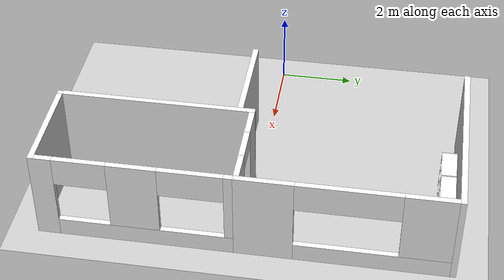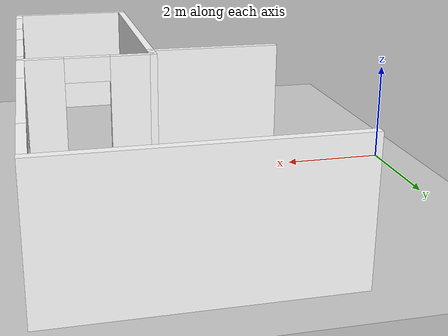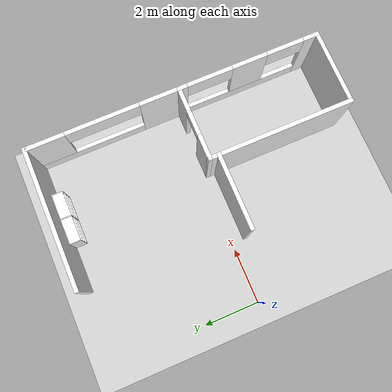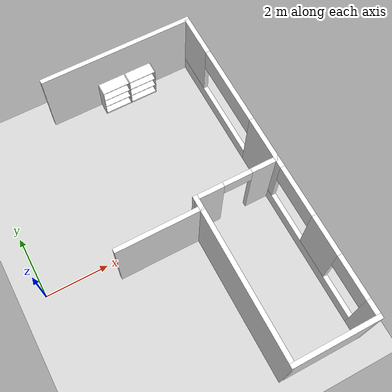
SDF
<sdf version="1.8">
 <world name="bot4House">
  <model name="ground_plane">
   <static>1</static>
   <link name="link">
    <collision name="collision">
     <geometry><plane><normal>0 0 1</normal><size>100 100</size></plane></geometry>
    </collision>
    <visual name="visual"><geometry><plane><normal>0 0 1</normal><size>100 100</size></plane></geometry></visual>
   </link>
  </model>
  <model name="house">
   <link name="Wall_106">
    <pose>6.2 -0.175 0 0 -0 0</pose>
    <visual name="Wall_106_Visual_1">
     <pose>0.922235 0 1.25 0 -0 0</pose>
     <geometry><box><size>0.905529 0.15 2.5</size></box></geometry>
     <material>
      <ambient>1 1 1 1</ambient>
      <diffuse>1 1 1 1</diffuse>
      <specular>0.2 0.2 0.2 1</specular>
      <emissive>0 0 0 1</emissive>
     </material>
    </visual>
    <visual name="Wall_106_Visual_2">
     <pose>0.019471 0 2.25 0 -0 0</pose>
     <geometry><box><size>0.9 0.15 0.5</size></box></geometry>
     <material>
      <ambient>1 1 1 1</ambient>
      <diffuse>1 1 1 1</diffuse>
      <specular>0.2 0.2 0.2 1</specular>
      <emissive>0 0 0 1</emissive>
     </material>
    </visual>
    <visual name="Wall_106_Visual_0">
     <pose>-0.902765 0 1.25 0 -0 0</pose>
     <geometry><box><size>0.944471 0.15 2.5</size></box></geometry>
     <material>
      <ambient>1 1 1 1</ambient>
      <diffuse>1 1 1 1</diffuse>
      <specular>0.2 0.2 0.2 1</specular>
      <emissive>0 0 0 1</emissive>
     </material>
    </visual>
    <collision name="Wall_106_Collision_1">
     <pose>0.922235 0 1.25 0 -0 0</pose>
     <geometry><box><size>0.905529 0.15 2.5</size></box></geometry>
     <surface>
      <friction>
       <ode><mu>1</mu><mu2>1</mu2><fdir1>0 0 0</fdir1><slip1>0</slip1><slip2>0</slip2></ode>
       <torsional>
        <coefficient>1</coefficient>
        <patch_radius>0</patch_radius>
        <surface_radius>0</surface_radius>
        <use_patch_radius>1</use_patch_radius>
        <ode><slip>0</slip></ode>
       </torsional>
      </friction>
      <bounce><restitution_coefficient>0</restitution_coefficient><threshold>1e+06</threshold></bounce>
      <contact>
       <collide_without_contact>0</collide_without_contact>
       <collide_without_contact_bitmask>1</collide_without_contact_bitmask>
       <collide_bitmask>1</collide_bitmask>
       <ode>
        <soft_cfm>0</soft_cfm>
        <soft_erp>0.2</soft_erp>
        <kp>1e+13</kp>
        <kd>1</kd>
        <max_vel>0.01</max_vel>
        <min_depth>0</min_depth>
       </ode>
       <bullet>
        <split_impulse>1</split_impulse>
        <split_impulse_penetration_threshold>-0.01</split_impulse_penetration_threshold>
        <soft_cfm>0</soft_cfm>
        <soft_erp>0.2</soft_erp>
        <kp>1e+13</kp>
        <kd>1</kd>
       </bullet>
      </contact>
     </surface>
    </collision>
    <collision name="Wall_106_Collision_0">
     <pose>-0.902765 0 1.25 0 -0 0</pose>
     <geometry><box><size>0.944471 0.15 2.5</size></box></geometry>
     <surface>
      <friction>
       <ode><mu>1</mu><mu2>1</mu2><fdir1>0 0 0</fdir1><slip1>0</slip1><slip2>0</slip2></ode>
       <torsional>
        <coefficient>1</coefficient>
        <patch_radius>0</patch_radius>
        <surface_radius>0</surface_radius>
        <use_patch_radius>1</use_patch_radius>
        <ode><slip>0</slip></ode>
       </torsional>
      </friction>
      <bounce><restitution_coefficient>0</restitution_coefficient><threshold>1e+06</threshold></bounce>
      <contact>
       <collide_without_contact>0</collide_without_contact>
       <collide_without_contact_bitmask>1</collide_without_contact_bitmask>
       <collide_bitmask>1</collide_bitmask>
       <ode>
        <soft_cfm>0</soft_cfm>
        <soft_erp>0.2</soft_erp>
        <kp>1e+13</kp>
        <kd>1</kd>
        <max_vel>0.01</max_vel>
        <min_depth>0</min_depth>
       </ode>
       <bullet>
        <split_impulse>1</split_impulse>
        <split_impulse_penetration_threshold>-0.01</split_impulse_penetration_threshold>
        <soft_cfm>0</soft_cfm>
        <soft_erp>0.2</soft_erp>
        <kp>1e+13</kp>
        <kd>1</kd>
       </bullet>
      </contact>
     </surface>
    </collision>
    <collision name="Wall_106_Collision_2">
     <pose>0.019471 0 2.25 0 -0 0</pose>
     <geometry><box><size>0.9 0.15 0.5</size></box></geometry>
     <surface>
      <friction>
       <ode><mu>1</mu><mu2>1</mu2><fdir1>0 0 0</fdir1><slip1>0</slip1><slip2>0</slip2></ode>
       <torsional>
        <coefficient>1</coefficient>
        <patch_radius>0</patch_radius>
        <surface_radius>0</surface_radius>
        <use_patch_radius>1</use_patch_radius>
        <ode><slip>0</slip></ode>
       </torsional>
      </friction>
      <bounce><restitution_coefficient>0</restitution_coefficient><threshold>1e+06</threshold></bounce>
      <contact>
       <collide_without_contact>0</collide_without_contact>
       <collide_without_contact_bitmask>1</collide_without_contact_bitmask>
       <collide_bitmask>1</collide_bitmask>
       <ode>
        <soft_cfm>0</soft_cfm>
        <soft_erp>0.2</soft_erp>
        <kp>1e+13</kp>
        <kd>1</kd>
        <max_vel>0.01</max_vel>
        <min_depth>0</min_depth>
       </ode>
       <bullet>
        <split_impulse>1</split_impulse>
        <split_impulse_penetration_threshold>-0.01</split_impulse_penetration_threshold>
        <soft_cfm>0</soft_cfm>
        <soft_erp>0.2</soft_erp>
        <kp>1e+13</kp>
        <kd>1</kd>
       </bullet>
      </contact>
     </surface>
    </collision>
   </link>
   <link name="Wall_81">
    <pose>5.07752 5.2688 0 0 -0 3.14159</pose>
    <visual name="Wall_81_Visual">
     <pose>0 0 1.25 0 -0 0</pose>
     <geometry><box><size>5 0.15 2.5</size></box></geometry>
     <material>
      <ambient>1 1 1 1</ambient>
      <diffuse>1 1 1 1</diffuse>
      <specular>0.2 0.2 0.2 1</specular>
      <emissive>0 0 0 1</emissive>
     </material>
    </visual>
    <collision name="Wall_81_Collision">
     <pose>0 0 1.25 0 -0 0</pose>
     <geometry><box><size>5 0.15 2.5</size></box></geometry>
     <surface>
      <friction>
       <ode><mu>1</mu><mu2>1</mu2><fdir1>0 0 0</fdir1><slip1>0</slip1><slip2>0</slip2></ode>
       <torsional>
        <coefficient>1</coefficient>
        <patch_radius>0</patch_radius>
        <surface_radius>0</surface_radius>
        <use_patch_radius>1</use_patch_radius>
        <ode><slip>0</slip></ode>
       </torsional>
      </friction>
      <bounce><restitution_coefficient>0</restitution_coefficient><threshold>1e+06</threshold></bounce>
      <contact>
       <collide_without_contact>0</collide_without_contact>
       <collide_without_contact_bitmask>1</collide_without_contact_bitmask>
       <collide_bitmask>1</collide_bitmask>
       <ode>
        <soft_cfm>0</soft_cfm>
        <soft_erp>0.2</soft_erp>
        <kp>1e+13</kp>
        <kd>1</kd>
        <max_vel>0.01</max_vel>
        <min_depth>0</min_depth>
       </ode>
       <bullet>
        <split_impulse>1</split_impulse>
        <split_impulse_penetration_threshold>-0.01</split_impulse_penetration_threshold>
        <soft_cfm>0</soft_cfm>
        <soft_erp>0.2</soft_erp>
        <kp>1e+13</kp>
        <kd>1</kd>
       </bullet>
      </contact>
     </surface>
    </collision>
   </link>
   <link name="Wall_92">
    <pose>3.59994 -0.5 0 0 0 -4.6e-05</pose>
    <visual name="Wall_92_Visual">
     <pose>0 0 1.25 0 -0 0</pose>
     <geometry><box><size>2.75 0.15 2.5</size></box></geometry>
     <material>
      <ambient>1 1 1 1</ambient>
      <diffuse>1 1 1 1</diffuse>
      <specular>0.2 0.2 0.2 1</specular>
      <emissive>0 0 0 1</emissive>
     </material>
    </visual>
    <collision name="Wall_92_Collision">
     <pose>0 0 1.25 0 -0 0</pose>
     <geometry><box><size>2.75 0.15 2.5</size></box></geometry>
     <surface>
      <friction>
       <ode><mu>1</mu><mu2>1</mu2><fdir1>0 0 0</fdir1><slip1>0</slip1><slip2>0</slip2></ode>
       <torsional>
        <coefficient>1</coefficient>
        <patch_radius>0</patch_radius>
        <surface_radius>0</surface_radius>
        <use_patch_radius>1</use_patch_radius>
        <ode><slip>0</slip></ode>
       </torsional>
      </friction>
      <bounce><restitution_coefficient>0</restitution_coefficient><threshold>1e+06</threshold></bounce>
      <contact>
       <collide_without_contact>0</collide_without_contact>
       <collide_without_contact_bitmask>1</collide_without_contact_bitmask>
       <collide_bitmask>1</collide_bitmask>
       <ode>
        <soft_cfm>0</soft_cfm>
        <soft_erp>0.2</soft_erp>
        <kp>1e+13</kp>
        <kd>1</kd>
        <max_vel>0.01</max_vel>
        <min_depth>0</min_depth>
       </ode>
       <bullet>
        <split_impulse>1</split_impulse>
        <split_impulse_penetration_threshold>-0.01</split_impulse_penetration_threshold>
        <soft_cfm>0</soft_cfm>
        <soft_erp>0.2</soft_erp>
        <kp>1e+13</kp>
        <kd>1</kd>
       </bullet>
      </contact>
     </surface>
    </collision>
   </link>
   <link name="Wall_93">
    <pose>4.9 -2.725 0 0 0 -1.5708</pose>
    <visual name="Wall_93_Visual">
     <pose>0 0 1.25 0 -0 0</pose>
     <geometry><box><size>5.25 0.15 2.5</size></box></geometry>
     <material>
      <ambient>1 1 1 1</ambient>
      <diffuse>1 1 1 1</diffuse>
      <specular>0.2 0.2 0.2 1</specular>
      <emissive>0 0 0 1</emissive>
     </material>
    </visual>
    <collision name="Wall_93_Collision">
     <pose>0 0 1.25 0 -0 0</pose>
     <geometry><box><size>5.25 0.15 2.5</size></box></geometry>
     <surface>
      <friction>
       <ode><mu>1</mu><mu2>1</mu2><fdir1>0 0 0</fdir1><slip1>0</slip1><slip2>0</slip2></ode>
       <torsional>
        <coefficient>1</coefficient>
        <patch_radius>0</patch_radius>
        <surface_radius>0</surface_radius>
        <use_patch_radius>1</use_patch_radius>
        <ode><slip>0</slip></ode>
       </torsional>
      </friction>
      <bounce><restitution_coefficient>0</restitution_coefficient><threshold>1e+06</threshold></bounce>
      <contact>
       <collide_without_contact>0</collide_without_contact>
       <collide_without_contact_bitmask>1</collide_without_contact_bitmask>
       <collide_bitmask>1</collide_bitmask>
       <ode>
        <soft_cfm>0</soft_cfm>
        <soft_erp>0.2</soft_erp>
        <kp>1e+13</kp>
        <kd>1</kd>
        <max_vel>0.01</max_vel>
        <min_depth>0</min_depth>
       </ode>
       <bullet>
        <split_impulse>1</split_impulse>
        <split_impulse_penetration_threshold>-0.01</split_impulse_penetration_threshold>
        <soft_cfm>0</soft_cfm>
        <soft_erp>0.2</soft_erp>
        <kp>1e+13</kp>
        <kd>1</kd>
       </bullet>
      </contact>
     </surface>
    </collision>
   </link>
   <link name="Wall_94">
    <pose>6.2 -5.275 0 0 -0 0</pose>
    <visual name="Wall_94_Visual">
     <pose>0 0 1.25 0 -0 0</pose>
     <geometry><box><size>2.75 0.15 2.5</size></box></geometry>
     <material>
      <ambient>1 1 1 1</ambient>
      <diffuse>1 1 1 1</diffuse>
      <specular>0.2 0.2 0.2 1</specular>
      <emissive>0 0 0 1</emissive>
     </material>
    </visual>
    <collision name="Wall_94_Collision">
     <pose>0 0 1.25 0 -0 0</pose>
     <geometry><box><size>2.75 0.15 2.5</size></box></geometry>
     <surface>
      <friction>
       <ode><mu>1</mu><mu2>1</mu2><fdir1>0 0 0</fdir1><slip1>0</slip1><slip2>0</slip2></ode>
       <torsional>
        <coefficient>1</coefficient>
        <patch_radius>0</patch_radius>
        <surface_radius>0</surface_radius>
        <use_patch_radius>1</use_patch_radius>
        <ode><slip>0</slip></ode>
       </torsional>
      </friction>
      <bounce><restitution_coefficient>0</restitution_coefficient><threshold>1e+06</threshold></bounce>
      <contact>
       <collide_without_contact>0</collide_without_contact>
       <collide_without_contact_bitmask>1</collide_without_contact_bitmask>
       <collide_bitmask>1</collide_bitmask>
       <ode>
        <soft_cfm>0</soft_cfm>
        <soft_erp>0.2</soft_erp>
        <kp>1e+13</kp>
        <kd>1</kd>
        <max_vel>0.01</max_vel>
        <min_depth>0</min_depth>
       </ode>
       <bullet>
        <split_impulse>1</split_impulse>
        <split_impulse_penetration_threshold>-0.01</split_impulse_penetration_threshold>
        <soft_cfm>0</soft_cfm>
        <soft_erp>0.2</soft_erp>
        <kp>1e+13</kp>
        <kd>1</kd>
       </bullet>
      </contact>
     </surface>
    </collision>
   </link>
   <link name="Wall_95">
    <pose>7.5 -2.725 0 0 -0 1.5708</pose>
    <visual name="Wall_95_Visual_1">
     <pose>0.295715 0 0.25 0 -0 0</pose>
     <geometry><box><size>4.65857 0.15 0.5</size></box></geometry>
     <material>
      <ambient>1 1 1 1</ambient>
      <diffuse>1 1 1 1</diffuse>
      <specular>0.2 0.2 0.2 1</specular>
      <emissive>0 0 0 1</emissive>
     </material>
    </visual>
    <visual name="Wall_95_Visual_2">
     <pose>-0.036959 0 1.5 0 -0 0</pose>
     <geometry><box><size>1.27522 0.15 2</size></box></geometry>
     <material>
      <ambient>1 1 1 1</ambient>
      <diffuse>1 1 1 1</diffuse>
      <specular>0.2 0.2 0.2 1</specular>
      <emissive>0 0 0 1</emissive>
     </material>
    </visual>
    <visual name="Wall_95_Visual_3">
     <pose>2.43783 0 1.5 0 -0 0</pose>
     <geometry><box><size>0.374348 0.15 2</size></box></geometry>
     <material>
      <ambient>1 1 1 1</ambient>
      <diffuse>1 1 1 1</diffuse>
      <specular>0.2 0.2 0.2 1</specular>
      <emissive>0 0 0 1</emissive>
     </material>
    </visual>
    <visual name="Wall_95_Visual_5">
     <pose>1.42565 0 2.1 0 -0 0</pose>
     <geometry><box><size>1.65 0.15 0.8</size></box></geometry>
     <material>
      <ambient>1 1 1 1</ambient>
      <diffuse>1 1 1 1</diffuse>
      <specular>0.2 0.2 0.2 1</specular>
      <emissive>0 0 0 1</emissive>
     </material>
    </visual>
    <visual name="Wall_95_Visual_4">
     <pose>-1.35407 0 2.1 0 -0 0</pose>
     <geometry><box><size>1.359 0.15 0.8</size></box></geometry>
     <material>
      <ambient>1 1 1 1</ambient>
      <diffuse>1 1 1 1</diffuse>
      <specular>0.2 0.2 0.2 1</specular>
      <emissive>0 0 0 1</emissive>
     </material>
    </visual>
    <visual name="Wall_95_Visual_0">
     <pose>-2.32929 0 1.25 0 -0 0</pose>
     <geometry><box><size>0.591431 0.15 2.5</size></box></geometry>
     <material>
      <ambient>1 1 1 1</ambient>
      <diffuse>1 1 1 1</diffuse>
      <specular>0.2 0.2 0.2 1</specular>
      <emissive>0 0 0 1</emissive>
     </material>
    </visual>
    <collision name="Wall_95_Collision_2">
     <pose>-0.036959 0 1.5 0 -0 0</pose>
     <geometry><box><size>1.27522 0.15 2</size></box></geometry>
     <surface>
      <friction>
       <ode><mu>1</mu><mu2>1</mu2><fdir1>0 0 0</fdir1><slip1>0</slip1><slip2>0</slip2></ode>
       <torsional>
        <coefficient>1</coefficient>
        <patch_radius>0</patch_radius>
        <surface_radius>0</surface_radius>
        <use_patch_radius>1</use_patch_radius>
        <ode><slip>0</slip></ode>
       </torsional>
      </friction>
      <bounce><restitution_coefficient>0</restitution_coefficient><threshold>1e+06</threshold></bounce>
      <contact>
       <collide_without_contact>0</collide_without_contact>
       <collide_without_contact_bitmask>1</collide_without_contact_bitmask>
       <collide_bitmask>1</collide_bitmask>
       <ode>
        <soft_cfm>0</soft_cfm>
        <soft_erp>0.2</soft_erp>
        <kp>1e+13</kp>
        <kd>1</kd>
        <max_vel>0.01</max_vel>
        <min_depth>0</min_depth>
       </ode>
       <bullet>
        <split_impulse>1</split_impulse>
        <split_impulse_penetration_threshold>-0.01</split_impulse_penetration_threshold>
        <soft_cfm>0</soft_cfm>
        <soft_erp>0.2</soft_erp>
        <kp>1e+13</kp>
        <kd>1</kd>
       </bullet>
      </contact>
     </surface>
    </collision>
    <collision name="Wall_95_Collision_3">
     <pose>2.43783 0 1.5 0 -0 0</pose>
     <geometry><box><size>0.374348 0.15 2</size></box></geometry>
     <surface>
      <friction>
       <ode><mu>1</mu><mu2>1</mu2><fdir1>0 0 0</fdir1><slip1>0</slip1><slip2>0</slip2></ode>
       <torsional>
        <coefficient>1</coefficient>
        <patch_radius>0</patch_radius>
        <surface_radius>0</surface_radius>
        <use_patch_radius>1</use_patch_radius>
        <ode><slip>0</slip></ode>
       </torsional>
      </friction>
      <bounce><restitution_coefficient>0</restitution_coefficient><threshold>1e+06</threshold></bounce>
      <contact>
       <collide_without_contact>0</collide_without_contact>
       <collide_without_contact_bitmask>1</collide_without_contact_bitmask>
       <collide_bitmask>1</collide_bitmask>
       <ode>
        <soft_cfm>0</soft_cfm>
        <soft_erp>0.2</soft_erp>
        <kp>1e+13</kp>
        <kd>1</kd>
        <max_vel>0.01</max_vel>
        <min_depth>0</min_depth>
       </ode>
       <bullet>
        <split_impulse>1</split_impulse>
        <split_impulse_penetration_threshold>-0.01</split_impulse_penetration_threshold>
        <soft_cfm>0</soft_cfm>
        <soft_erp>0.2</soft_erp>
        <kp>1e+13</kp>
        <kd>1</kd>
       </bullet>
      </contact>
     </surface>
    </collision>
    <collision name="Wall_95_Collision_5">
     <pose>1.42565 0 2.1 0 -0 0</pose>
     <geometry><box><size>1.65 0.15 0.8</size></box></geometry>
     <surface>
      <friction>
       <ode><mu>1</mu><mu2>1</mu2><fdir1>0 0 0</fdir1><slip1>0</slip1><slip2>0</slip2></ode>
       <torsional>
        <coefficient>1</coefficient>
        <patch_radius>0</patch_radius>
        <surface_radius>0</surface_radius>
        <use_patch_radius>1</use_patch_radius>
        <ode><slip>0</slip></ode>
       </torsional>
      </friction>
      <bounce><restitution_coefficient>0</restitution_coefficient><threshold>1e+06</threshold></bounce>
      <contact>
       <collide_without_contact>0</collide_without_contact>
       <collide_without_contact_bitmask>1</collide_without_contact_bitmask>
       <collide_bitmask>1</collide_bitmask>
       <ode>
        <soft_cfm>0</soft_cfm>
        <soft_erp>0.2</soft_erp>
        <kp>1e+13</kp>
        <kd>1</kd>
        <max_vel>0.01</max_vel>
        <min_depth>0</min_depth>
       </ode>
       <bullet>
        <split_impulse>1</split_impulse>
        <split_impulse_penetration_threshold>-0.01</split_impulse_penetration_threshold>
        <soft_cfm>0</soft_cfm>
        <soft_erp>0.2</soft_erp>
        <kp>1e+13</kp>
        <kd>1</kd>
       </bullet>
      </contact>
     </surface>
    </collision>
    <collision name="Wall_95_Collision_0">
     <pose>-2.32929 0 1.25 0 -0 0</pose>
     <geometry><box><size>0.591431 0.15 2.5</size></box></geometry>
     <surface>
      <friction>
       <ode><mu>1</mu><mu2>1</mu2><fdir1>0 0 0</fdir1><slip1>0</slip1><slip2>0</slip2></ode>
       <torsional>
        <coefficient>1</coefficient>
        <patch_radius>0</patch_radius>
        <surface_radius>0</surface_radius>
        <use_patch_radius>1</use_patch_radius>
        <ode><slip>0</slip></ode>
       </torsional>
      </friction>
      <bounce><restitution_coefficient>0</restitution_coefficient><threshold>1e+06</threshold></bounce>
      <contact>
       <collide_without_contact>0</collide_without_contact>
       <collide_without_contact_bitmask>1</collide_without_contact_bitmask>
       <collide_bitmask>1</collide_bitmask>
       <ode>
        <soft_cfm>0</soft_cfm>
        <soft_erp>0.2</soft_erp>
        <kp>1e+13</kp>
        <kd>1</kd>
        <max_vel>0.01</max_vel>
        <min_depth>0</min_depth>
       </ode>
       <bullet>
        <split_impulse>1</split_impulse>
        <split_impulse_penetration_threshold>-0.01</split_impulse_penetration_threshold>
        <soft_cfm>0</soft_cfm>
        <soft_erp>0.2</soft_erp>
        <kp>1e+13</kp>
        <kd>1</kd>
       </bullet>
      </contact>
     </surface>
    </collision>
    <collision name="Wall_95_Collision_1">
     <pose>0.295715 0 0.25 0 -0 0</pose>
     <geometry><box><size>4.65857 0.15 0.5</size></box></geometry>
     <surface>
      <friction>
       <ode><mu>1</mu><mu2>1</mu2><fdir1>0 0 0</fdir1><slip1>0</slip1><slip2>0</slip2></ode>
       <torsional>
        <coefficient>1</coefficient>
        <patch_radius>0</patch_radius>
        <surface_radius>0</surface_radius>
        <use_patch_radius>1</use_patch_radius>
        <ode><slip>0</slip></ode>
       </torsional>
      </friction>
      <bounce><restitution_coefficient>0</restitution_coefficient><threshold>1e+06</threshold></bounce>
      <contact>
       <collide_without_contact>0</collide_without_contact>
       <collide_without_contact_bitmask>1</collide_without_contact_bitmask>
       <collide_bitmask>1</collide_bitmask>
       <ode>
        <soft_cfm>0</soft_cfm>
        <soft_erp>0.2</soft_erp>
        <kp>1e+13</kp>
        <kd>1</kd>
        <max_vel>0.01</max_vel>
        <min_depth>0</min_depth>
       </ode>
       <bullet>
        <split_impulse>1</split_impulse>
        <split_impulse_penetration_threshold>-0.01</split_impulse_penetration_threshold>
        <soft_cfm>0</soft_cfm>
        <soft_erp>0.2</soft_erp>
        <kp>1e+13</kp>
        <kd>1</kd>
       </bullet>
      </contact>
     </surface>
    </collision>
    <collision name="Wall_95_Collision_4">
     <pose>-1.35407 0 2.1 0 -0 0</pose>
     <geometry><box><size>1.359 0.15 0.8</size></box></geometry>
     <surface>
      <friction>
       <ode><mu>1</mu><mu2>1</mu2><fdir1>0 0 0</fdir1><slip1>0</slip1><slip2>0</slip2></ode>
       <torsional>
        <coefficient>1</coefficient>
        <patch_radius>0</patch_radius>
        <surface_radius>0</surface_radius>
        <use_patch_radius>1</use_patch_radius>
        <ode><slip>0</slip></ode>
       </torsional>
      </friction>
      <bounce><restitution_coefficient>0</restitution_coefficient><threshold>1e+06</threshold></bounce>
      <contact>
       <collide_without_contact>0</collide_without_contact>
       <collide_without_contact_bitmask>1</collide_without_contact_bitmask>
       <collide_bitmask>1</collide_bitmask>
       <ode>
        <soft_cfm>0</soft_cfm>
        <soft_erp>0.2</soft_erp>
        <kp>1e+13</kp>
        <kd>1</kd>
        <max_vel>0.01</max_vel>
        <min_depth>0</min_depth>
       </ode>
       <bullet>
        <split_impulse>1</split_impulse>
        <split_impulse_penetration_threshold>-0.01</split_impulse_penetration_threshold>
        <soft_cfm>0</soft_cfm>
        <soft_erp>0.2</soft_erp>
        <kp>1e+13</kp>
        <kd>1</kd>
       </bullet>
      </contact>
     </surface>
    </collision>
   </link>
   <link name="Wall_96">
    <pose>7.5 2.5 0 0 -0 1.5708</pose>
    <visual name="Wall_96_Visual_1">
     <pose>0.75174 0 0.25 0 -0 0</pose>
     <geometry><box><size>3.99652 0.15 0.5</size></box></geometry>
     <material>
      <ambient>1 1 1 1</ambient>
      <diffuse>1 1 1 1</diffuse>
      <specular>0.2 0.2 0.2 1</specular>
      <emissive>0 0 0 1</emissive>
     </material>
    </visual>
    <visual name="Wall_96_Visual_2">
     <pose>2.06924 0 1.5 0 -0 0</pose>
     <geometry><box><size>1.36152 0.15 2</size></box></geometry>
     <material>
      <ambient>1 1 1 1</ambient>
      <diffuse>1 1 1 1</diffuse>
      <specular>0.2 0.2 0.2 1</specular>
      <emissive>0 0 0 1</emissive>
     </material>
    </visual>
    <visual name="Wall_96_Visual_3">
     <pose>0.070981 0 2.1 0 -0 0</pose>
     <geometry><box><size>2.635 0.15 0.8</size></box></geometry>
     <material>
      <ambient>1 1 1 1</ambient>
      <diffuse>1 1 1 1</diffuse>
      <specular>0.2 0.2 0.2 1</specular>
      <emissive>0 0 0 1</emissive>
     </material>
    </visual>
    <visual name="Wall_96_Visual_0">
     <pose>-1.99826 0 1.25 0 -0 0</pose>
     <geometry><box><size>1.50348 0.15 2.5</size></box></geometry>
     <material>
      <ambient>1 1 1 1</ambient>
      <diffuse>1 1 1 1</diffuse>
      <specular>0.2 0.2 0.2 1</specular>
      <emissive>0 0 0 1</emissive>
     </material>
    </visual>
    <collision name="Wall_96_Collision_2">
     <pose>2.06924 0 1.5 0 -0 0</pose>
     <geometry><box><size>1.36152 0.15 2</size></box></geometry>
     <surface>
      <friction>
       <ode><mu>1</mu><mu2>1</mu2><fdir1>0 0 0</fdir1><slip1>0</slip1><slip2>0</slip2></ode>
       <torsional>
        <coefficient>1</coefficient>
        <patch_radius>0</patch_radius>
        <surface_radius>0</surface_radius>
        <use_patch_radius>1</use_patch_radius>
        <ode><slip>0</slip></ode>
       </torsional>
      </friction>
      <bounce><restitution_coefficient>0</restitution_coefficient><threshold>1e+06</threshold></bounce>
      <contact>
       <collide_without_contact>0</collide_without_contact>
       <collide_without_contact_bitmask>1</collide_without_contact_bitmask>
       <collide_bitmask>1</collide_bitmask>
       <ode>
        <soft_cfm>0</soft_cfm>
        <soft_erp>0.2</soft_erp>
        <kp>1e+13</kp>
        <kd>1</kd>
        <max_vel>0.01</max_vel>
        <min_depth>0</min_depth>
       </ode>
       <bullet>
        <split_impulse>1</split_impulse>
        <split_impulse_penetration_threshold>-0.01</split_impulse_penetration_threshold>
        <soft_cfm>0</soft_cfm>
        <soft_erp>0.2</soft_erp>
        <kp>1e+13</kp>
        <kd>1</kd>
       </bullet>
      </contact>
     </surface>
    </collision>
    <collision name="Wall_96_Collision_0">
     <pose>-1.99826 0 1.25 0 -0 0</pose>
     <geometry><box><size>1.50348 0.15 2.5</size></box></geometry>
     <surface>
      <friction>
       <ode><mu>1</mu><mu2>1</mu2><fdir1>0 0 0</fdir1><slip1>0</slip1><slip2>0</slip2></ode>
       <torsional>
        <coefficient>1</coefficient>
        <patch_radius>0</patch_radius>
        <surface_radius>0</surface_radius>
        <use_patch_radius>1</use_patch_radius>
        <ode><slip>0</slip></ode>
       </torsional>
      </friction>
      <bounce><restitution_coefficient>0</restitution_coefficient><threshold>1e+06</threshold></bounce>
      <contact>
       <collide_without_contact>0</collide_without_contact>
       <collide_without_contact_bitmask>1</collide_without_contact_bitmask>
       <collide_bitmask>1</collide_bitmask>
       <ode>
        <soft_cfm>0</soft_cfm>
        <soft_erp>0.2</soft_erp>
        <kp>1e+13</kp>
        <kd>1</kd>
        <max_vel>0.01</max_vel>
        <min_depth>0</min_depth>
       </ode>
       <bullet>
        <split_impulse>1</split_impulse>
        <split_impulse_penetration_threshold>-0.01</split_impulse_penetration_threshold>
        <soft_cfm>0</soft_cfm>
        <soft_erp>0.2</soft_erp>
        <kp>1e+13</kp>
        <kd>1</kd>
       </bullet>
      </contact>
     </surface>
    </collision>
    <collision name="Wall_96_Collision_3">
     <pose>0.070981 0 2.1 0 -0 0</pose>
     <geometry><box><size>2.635 0.15 0.8</size></box></geometry>
     <surface>
      <friction>
       <ode><mu>1</mu><mu2>1</mu2><fdir1>0 0 0</fdir1><slip1>0</slip1><slip2>0</slip2></ode>
       <torsional>
        <coefficient>1</coefficient>
        <patch_radius>0</patch_radius>
        <surface_radius>0</surface_radius>
        <use_patch_radius>1</use_patch_radius>
        <ode><slip>0</slip></ode>
       </torsional>
      </friction>
      <bounce><restitution_coefficient>0</restitution_coefficient><threshold>1e+06</threshold></bounce>
      <contact>
       <collide_without_contact>0</collide_without_contact>
       <collide_without_contact_bitmask>1</collide_without_contact_bitmask>
       <collide_bitmask>1</collide_bitmask>
       <ode>
        <soft_cfm>0</soft_cfm>
        <soft_erp>0.2</soft_erp>
        <kp>1e+13</kp>
        <kd>1</kd>
        <max_vel>0.01</max_vel>
        <min_depth>0</min_depth>
       </ode>
       <bullet>
        <split_impulse>1</split_impulse>
        <split_impulse_penetration_threshold>-0.01</split_impulse_penetration_threshold>
        <soft_cfm>0</soft_cfm>
        <soft_erp>0.2</soft_erp>
        <kp>1e+13</kp>
        <kd>1</kd>
       </bullet>
      </contact>
     </surface>
    </collision>
    <collision name="Wall_96_Collision_1">
     <pose>0.75174 0 0.25 0 -0 0</pose>
     <geometry><box><size>3.99652 0.15 0.5</size></box></geometry>
     <surface>
      <friction>
       <ode><mu>1</mu><mu2>1</mu2><fdir1>0 0 0</fdir1><slip1>0</slip1><slip2>0</slip2></ode>
       <torsional>
        <coefficient>1</coefficient>
        <patch_radius>0</patch_radius>
        <surface_radius>0</surface_radius>
        <use_patch_radius>1</use_patch_radius>
        <ode><slip>0</slip></ode>
       </torsional>
      </friction>
      <bounce><restitution_coefficient>0</restitution_coefficient><threshold>1e+06</threshold></bounce>
      <contact>
       <collide_without_contact>0</collide_without_contact>
       <collide_without_contact_bitmask>1</collide_without_contact_bitmask>
       <collide_bitmask>1</collide_bitmask>
       <ode>
        <soft_cfm>0</soft_cfm>
        <soft_erp>0.2</soft_erp>
        <kp>1e+13</kp>
        <kd>1</kd>
        <max_vel>0.01</max_vel>
        <min_depth>0</min_depth>
       </ode>
       <bullet>
        <split_impulse>1</split_impulse>
        <split_impulse_penetration_threshold>-0.01</split_impulse_penetration_threshold>
        <soft_cfm>0</soft_cfm>
        <soft_erp>0.2</soft_erp>
        <kp>1e+13</kp>
        <kd>1</kd>
       </bullet>
      </contact>
     </surface>
    </collision>
   </link>
   <model name="bookshelf_0">
    <static>1</static>
    <link name="link">
     <inertial><mass>1</mass></inertial>
     <collision name="back">
      <pose>0 0.005 0.6 0 -0 0</pose>
      <geometry><box><size>0.9 0.01 1.2</size></box></geometry>
     </collision>
     <visual name="visual1">
      <pose>0 0.005 0.6 0 -0 0</pose>
      <geometry><box><size>0.9 0.01 1.2</size></box></geometry>
      <material>
       <ambient>1 1 1 1</ambient>
       <diffuse>1 1 1 1</diffuse>
       <specular>0.2 0.2 0.2 1</specular>
       <emissive>0 0 0 1</emissive>
      </material>
     </visual>
     <collision name="left_side">
      <pose>0.45 -0.195 0.6 0 -0 0</pose>
      <geometry><box><size>0.02 0.4 1.2</size></box></geometry>
     </collision>
     <visual name="visual2">
      <pose>0.45 -0.195 0.6 0 -0 0</pose>
      <geometry><box><size>0.02 0.4 1.2</size></box></geometry>
      <material>
       <ambient>1 1 1 1</ambient>
       <diffuse>1 1 1 1</diffuse>
       <specular>0.2 0.2 0.2 1</specular>
       <emissive>0 0 0 1</emissive>
      </material>
     </visual>
     <collision name="right_side">
      <pose>-0.45 -0.195 0.6 0 -0 0</pose>
      <geometry><box><size>0.02 0.4 1.2</size></box></geometry>
     </collision>
     <visual name="visual3">
      <pose>-0.45 -0.195 0.6 0 -0 0</pose>
      <geometry><box><size>0.02 0.4 1.2</size></box></geometry>
      <material>
       <ambient>1 1 1 1</ambient>
       <diffuse>1 1 1 1</diffuse>
       <specular>0.2 0.2 0.2 1</specular>
       <emissive>0 0 0 1</emissive>
      </material>
     </visual>
     <collision name="bottom">
      <pose>0 -0.195 0.03 0 -0 0</pose>
      <geometry><box><size>0.88 0.4 0.06</size></box></geometry>
     </collision>
     <visual name="visual4">
      <pose>0 -0.195 0.03 0 -0 0</pose>
      <geometry><box><size>0.88 0.4 0.06</size></box></geometry>
      <material>
       <ambient>1 1 1 1</ambient>
       <diffuse>1 1 1 1</diffuse>
       <specular>0.2 0.2 0.2 1</specular>
       <emissive>0 0 0 1</emissive>
      </material>
     </visual>
     <collision name="top">
      <pose>0 -0.195 1.19 0 -0 0</pose>
      <geometry><box><size>0.88 0.4 0.02</size></box></geometry>
     </collision>
     <visual name="visual5">
      <pose>0 -0.195 1.19 0 -0 0</pose>
      <geometry><box><size>0.88 0.4 0.02</size></box></geometry>
      <material>
       <ambient>1 1 1 1</ambient>
       <diffuse>1 1 1 1</diffuse>
       <specular>0.2 0.2 0.2 1</specular>
       <emissive>0 0 0 1</emissive>
      </material>
     </visual>
     <collision name="low_shelf">
      <pose>0 -0.195 0.43 0 -0 0</pose>
      <geometry><box><size>0.88 0.4 0.02</size></box></geometry>
     </collision>
     <visual name="visual6">
      <pose>0 -0.195 0.43 0 -0 0</pose>
      <geometry><box><size>0.88 0.4 0.02</size></box></geometry>
      <material>
       <ambient>1 1 1 1</ambient>
       <diffuse>1 1 1 1</diffuse>
       <specular>0.2 0.2 0.2 1</specular>
       <emissive>0 0 0 1</emissive>
      </material>
     </visual>
     <collision name="high_shelf">
      <pose>0 -0.195 0.8 0 -0 0</pose>
      <geometry><box><size>0.88 0.4 0.02</size></box></geometry>
     </collision>
     <visual name="visual7">
      <pose>0 -0.195 0.8 0 -0 0</pose>
      <geometry><box><size>0.88 0.4 0.02</size></box></geometry>
      <material>
       <ambient>1 1 1 1</ambient>
       <diffuse>1 1 1 1</diffuse>
       <specular>0.2 0.2 0.2 1</specular>
       <emissive>0 0 0 1</emissive>
      </material>
     </visual>
    </link>
    <pose>4.72359 5.17921 0 0 -0 0</pose>
   </model>
   <model name="bookshelf_1">
    <static>1</static>
    <link name="link">
     <inertial><mass>1</mass></inertial>
     <collision name="back">
      <pose>0 0.005 0.6 0 -0 0</pose>
      <geometry><box><size>0.9 0.01 1.2</size></box></geometry>
     </collision>
     <visual name="visual1">
      <pose>0 0.005 0.6 0 -0 0</pose>
      <geometry><box><size>0.9 0.01 1.2</size></box></geometry>
      <material>
       <ambient>1 1 1 1</ambient>
       <diffuse>1 1 1 1</diffuse>
       <specular>0.2 0.2 0.2 1</specular>
       <emissive>0 0 0 1</emissive>
      </material>
     </visual>
     <collision name="left_side">
      <pose>0.45 -0.195 0.6 0 -0 0</pose>
      <geometry><box><size>0.02 0.4 1.2</size></box></geometry>
     </collision>
     <visual name="visual2">
      <pose>0.45 -0.195 0.6 0 -0 0</pose>
      <geometry><box><size>0.02 0.4 1.2</size></box></geometry>
      <material>
       <ambient>1 1 1 1</ambient>
       <diffuse>1 1 1 1</diffuse>
       <specular>0.2 0.2 0.2 1</specular>
       <emissive>0 0 0 1</emissive>
      </material>
     </visual>
     <collision name="right_side">
      <pose>-0.45 -0.195 0.6 0 -0 0</pose>
      <geometry><box><size>0.02 0.4 1.2</size></box></geometry>
     </collision>
     <visual name="visual3">
      <pose>-0.45 -0.195 0.6 0 -0 0</pose>
      <geometry><box><size>0.02 0.4 1.2</size></box></geometry>
      <material>
       <ambient>1 1 1 1</ambient>
       <diffuse>1 1 1 1</diffuse>
       <specular>0.2 0.2 0.2 1</specular>
       <emissive>0 0 0 1</emissive>
      </material>
     </visual>
     <collision name="bottom">
      <pose>0 -0.195 0.03 0 -0 0</pose>
      <geometry><box><size>0.88 0.4 0.06</size></box></geometry>
     </collision>
     <visual name="visual4">
      <pose>0 -0.195 0.03 0 -0 0</pose>
      <geometry><box><size>0.88 0.4 0.06</size></box></geometry>
      <material>
       <ambient>1 1 1 1</ambient>
       <diffuse>1 1 1 1</diffuse>
       <specular>0.2 0.2 0.2 1</specular>
       <emissive>0 0 0 1</emissive>
      </material>
     </visual>
     <collision name="top">
      <pose>0 -0.195 1.19 0 -0 0</pose>
      <geometry><box><size>0.88 0.4 0.02</size></box></geometry>
     </collision>
     <visual name="visual5">
      <pose>0 -0.195 1.19 0 -0 0</pose>
      <geometry><box><size>0.88 0.4 0.02</size></box></geometry>
      <material>
       <ambient>1 1 1 1</ambient>
       <diffuse>1 1 1 1</diffuse>
       <specular>0.2 0.2 0.2 1</specular>
       <emissive>0 0 0 1</emissive>
      </material>
     </visual>
     <collision name="low_shelf">
      <pose>0 -0.195 0.43 0 -0 0</pose>
      <geometry><box><size>0.88 0.4 0.02</size></box></geometry>
     </collision>
     <visual name="visual6">
      <pose>0 -0.195 0.43 0 -0 0</pose>
      <geometry><box><size>0.88 0.4 0.02</size></box></geometry>
      <material>
       <ambient>1 1 1 1</ambient>
       <diffuse>1 1 1 1</diffuse>
       <specular>0.2 0.2 0.2 1</specular>
       <emissive>0 0 0 1</emissive>
      </material>
     </visual>
     <collision name="high_shelf">
      <pose>0 -0.195 0.8 0 -0 0</pose>
      <geometry><box><size>0.88 0.4 0.02</size></box></geometry>
     </collision>
     <visual name="visual7">
      <pose>0 -0.195 0.8 0 -0 0</pose>
      <geometry><box><size>0.88 0.4 0.02</size></box></geometry>
      <material>
       <ambient>1 1 1 1</ambient>
       <diffuse>1 1 1 1</diffuse>
       <specular>0.2 0.2 0.2 1</specular>
       <emissive>0 0 0 1</emissive>
      </material>
     </visual>
    </link>
    <pose>5.64449 5.17912 0 0 -0 0</pose>
   </model>
   <static>1</static>
  </model>
 </world>
</sdf>
